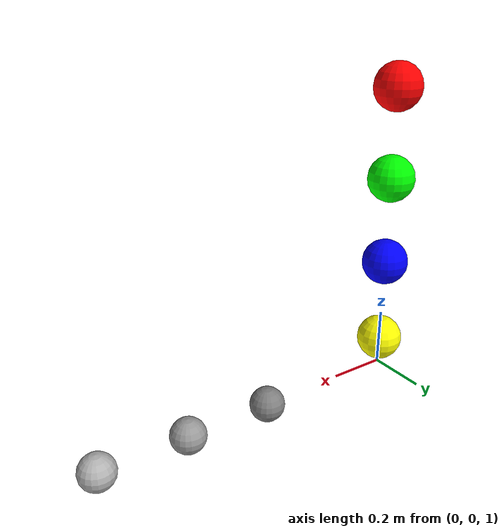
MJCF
<mujoco model="stiff_springs">
  <option gravity="0 0 -9.81" timestep="0.005" integrator="implicitfast"/>

  <worldbody>
    <!-- Vertical chain of masses connected by stiff springs -->
    <body name="m1" pos="0 0 2.0">
      <joint name="j1" type="slide" axis="0 0 1" stiffness="10000" damping="20"/>
      <geom type="sphere" size="0.08" mass="1.0" rgba="1 0 0 1"/>

      <body name="m2" pos="0 0 -0.3">
        <joint name="j2" type="slide" axis="0 0 1" stiffness="8000" damping="15"/>
        <geom type="sphere" size="0.08" mass="0.8" rgba="0 1 0 1"/>

        <body name="m3" pos="0 0 -0.3">
          <joint name="j3" type="slide" axis="0 0 1" stiffness="6000" damping="12"/>
          <geom type="sphere" size="0.08" mass="0.6" rgba="0 0 1 1"/>

          <body name="m4" pos="0 0 -0.3">
            <joint name="j4" type="slide" axis="0 0 1" stiffness="5000" damping="10"/>
            <geom type="sphere" size="0.08" mass="0.5" rgba="1 1 0 1"/>
          </body>
        </body>
      </body>
    </body>

    <!-- Horizontal chain -->
    <body name="h1" pos="0.5 0 1.0">
      <joint name="hj1" type="slide" axis="1 0 0" stiffness="12000" damping="25"/>
      <geom type="sphere" size="0.06" mass="0.5" rgba="0.5 0.5 0.5 1"/>

      <body name="h2" pos="0.3 0 0">
        <joint name="hj2" type="slide" axis="1 0 0" stiffness="9000" damping="18"/>
        <geom type="sphere" size="0.06" mass="0.5" rgba="0.6 0.6 0.6 1"/>

        <body name="h3" pos="0.3 0 0">
          <joint name="hj3" type="slide" axis="1 0 0" stiffness="7000" damping="14"/>
          <geom type="sphere" size="0.06" mass="0.5" rgba="0.7 0.7 0.7 1"/>
        </body>
      </body>
    </body>
  </worldbody>
</mujoco>
